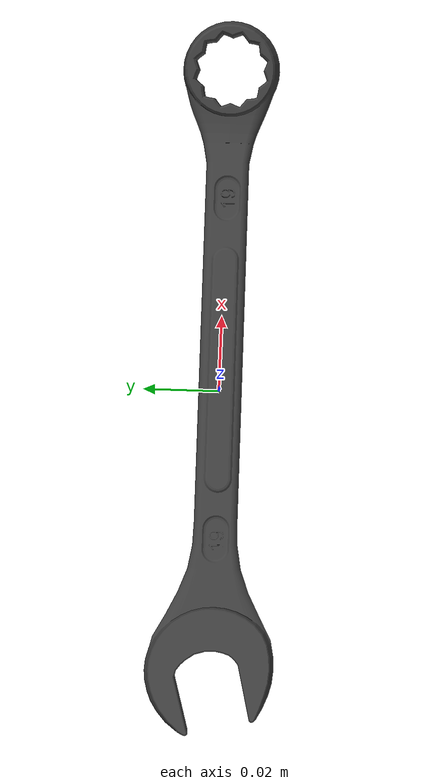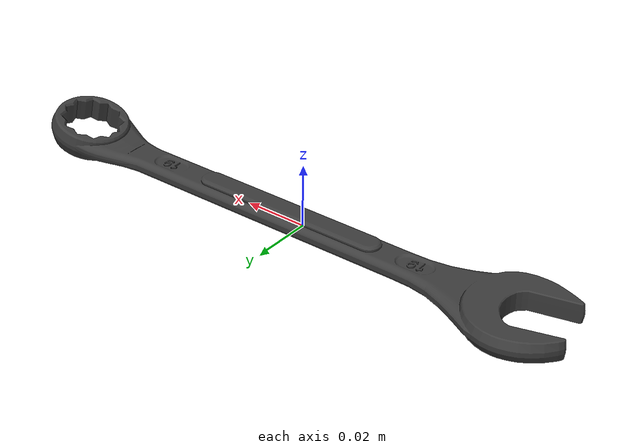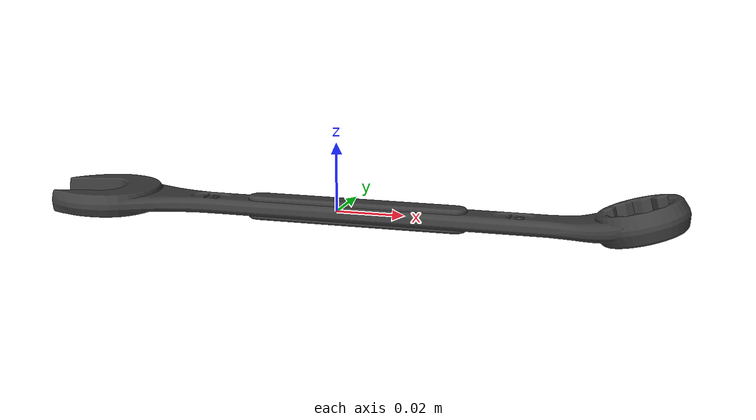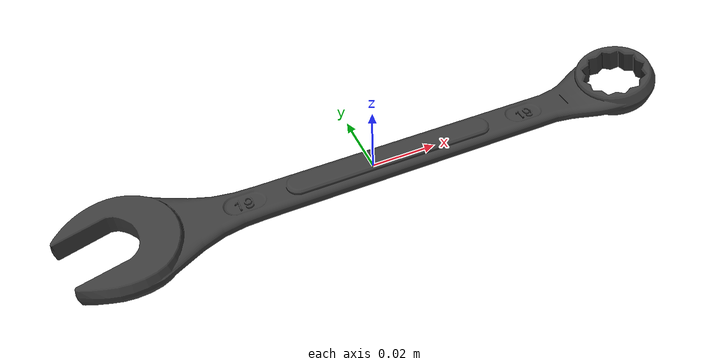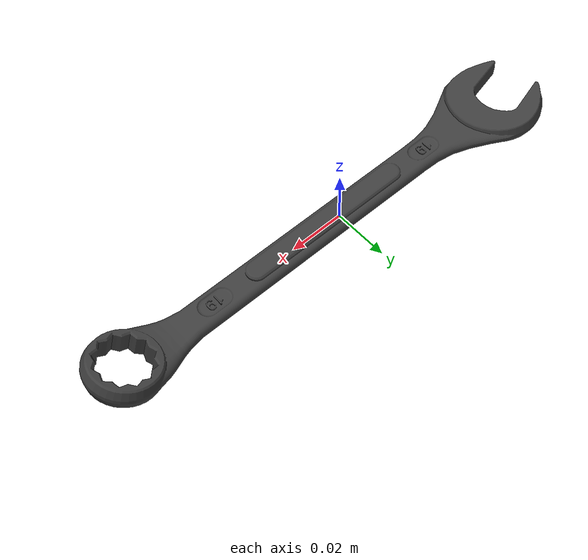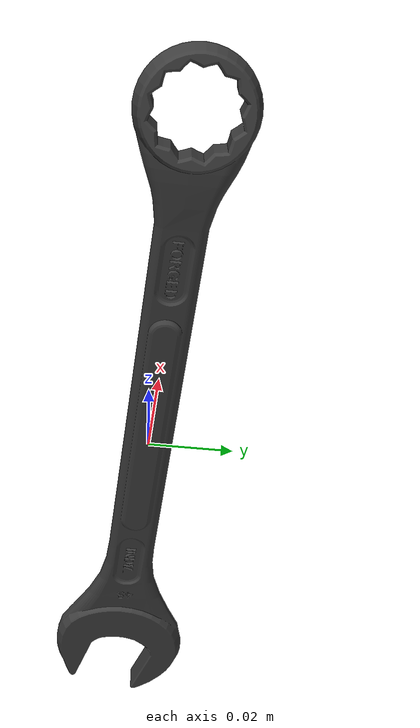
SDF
<?xml version='1.0'?>
<sdf version='1.6'>
  <model name='jsk_open_end_wrench'>
    <link name='link_0'>
      <inertial>
        <mass>0.5</mass>
        <pose> 0.02 0 0 0 0 0</pose>
        <inertia>
          <ixx>6.0e-5</ixx>
          <iyy>2.0e-3</iyy>
          <izz>2.0e-3</izz>
          <ixy>0</ixy>
          <ixz>0</ixz>
          <iyz>0</iyz>
        </inertia>
      </inertial>
      <visual name='visual'>
        <pose frame=''>0 0 -0.00325 0 -0 0</pose>
        <geometry>
          <mesh>
            <uri>model://jsk_open_end_wrench/meshes/Open_End_Wrench.dae</uri>
            <scale>0.08 0.08 0.08</scale>
          </mesh>
        </geometry>
      </visual>

      <collision name='simple_0'>
        <laser_retro>0</laser_retro>
        <max_contacts>10</max_contacts>
        <pose frame=''>0.005 0 0 0 -0 0</pose>
        <geometry>
          <box>
            <size>0.15 0.015 0.0065</size>
          </box>
        </geometry>
      </collision>
      <collision name='simple_1'>
        <laser_retro>0</laser_retro>
        <max_contacts>10</max_contacts>
        <pose frame=''>-0.072 0 0 0 0 0</pose>
        <geometry>
          <cylinder>
            <radius> 0.018 </radius>
            <length> 0.007 </length>
          </cylinder>
        </geometry>
      </collision>
      <collision name='simple_2'>
        <laser_retro>0</laser_retro>
        <max_contacts>10</max_contacts>
        <pose frame=''>0.085 0 0.0026 0 -0.2 0</pose>
        <geometry>
          <cylinder>
            <radius> 0.013 </radius>
            <length> 0.007 </length>
          </cylinder>
        </geometry>
      </collision>
    </link>
  </model>
</sdf>
